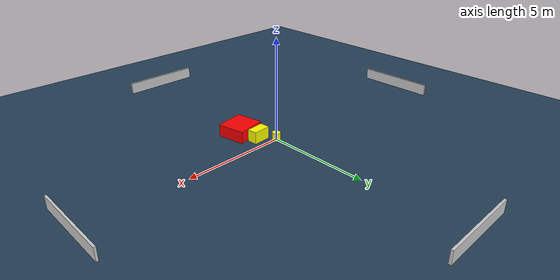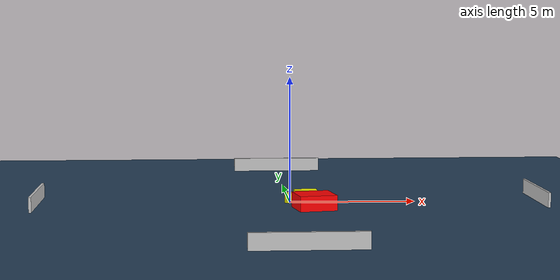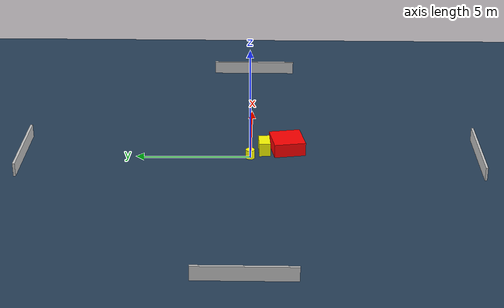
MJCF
<?xml version="1.0" ?>
<mujoco model="generated_environment">
  <option timestep="0.01" integrator="RK4" cone="elliptic"/>
  <default>
    <geom density="1"/>
  </default>
  <asset>
    <texture builtin="gradient" height="3072" name="skybox" rgb1="0.3 0.5 0.7" rgb2="0 0 0" type="skybox" width="512"/>
    <texture builtin="checker" height="300" name="groundplane" rgb1="0.2 0.3 0.4" rgb2="0.1 0.2 0.3" type="2d" width="300"/>
    <material name="groundplane" reflectance="0.2" texrepeat="5 5" texture="groundplane"/>
  </asset>
  <worldbody>
    <light dir="0 0 -1" directional="true" pos="0 0 1.5"/>
    <geom condim="3" friction="0.5 0.005 0.001" material="groundplane" name="floor" pos="0 0 0" size="0 0 0.05" type="plane"/>
    <body name="walls">
      <geom name="wall_1" condim="4" pos="-10.0 0.0 0.3" rgba="0.800000011920929 0.800000011920929 0.800000011920929 1.0" size="0.05 2.0 0.3" type="box"/>
      <geom name="wall_2" condim="4" pos="10.0 0.0 0.3" rgba="0.800000011920929 0.800000011920929 0.800000011920929 1.0" size="0.05 2.0 0.3" type="box"/>
      <geom name="wall_3" condim="4" pos="0.0 -10.0 0.3" rgba="0.800000011920929 0.800000011920929 0.800000011920929 1.0" size="2.0 0.05 0.3" type="box"/>
      <geom name="wall_4" condim="4" pos="0.0 10.0 0.3" rgba="0.800000011920929 0.800000011920929 0.800000011920929 1.0" size="2.0 0.05 0.3" type="box"/>
    </body>
    <body name="robot">
      <joint name="joint_x" type="slide" pos="0 0 0" axis="1 0 0"/>
      <joint name="joint_y" type="slide" pos="0 0 0" axis="0 1 0"/>
      <geom name="robot" type="cylinder" pos="0.0 0.0 0.2" size="0.2 0.2 0.0" mass="5.0" friction="1.0 0.005 0.0001" condim="4" rgba="1.0 1.0 0.0 1.0"/>
    </body>
    <body name="obstacle_1_movable">
      <geom name="obstacle_1_movable" condim="4" pos="0.5871369325857988 -0.6124004699898045 0.3" euler="0 0 183.8499442673846" friction="0.0 0.005 0.001" rgba="1.0 1.0 0.0 1.0" size="0.4446320207910412 0.24583395137085867 0.3" type="box" mass="0.1"/>
      <joint type="free"/>
    </body>
    <body name="obstacle_2_static">
      <geom name="obstacle_2_static" condim="4" pos="0.8511021000843451 -1.6250037080544237 0.3" euler="0 0 190.35888012737746" friction="0.0 0.005 0.001" rgba="1.0 0.0 0.0 1.0" size="0.7308984702477634 0.695747945290714 0.3" type="box"/>
    </body>
  </worldbody>
  <actuator>
    <motor name="actuator_x" joint="joint_x" gear="1" ctrlrange="-1 1"/>
    <motor name="actuator_y" joint="joint_y" gear="1" ctrlrange="-1 1"/>
  </actuator>
</mujoco>
